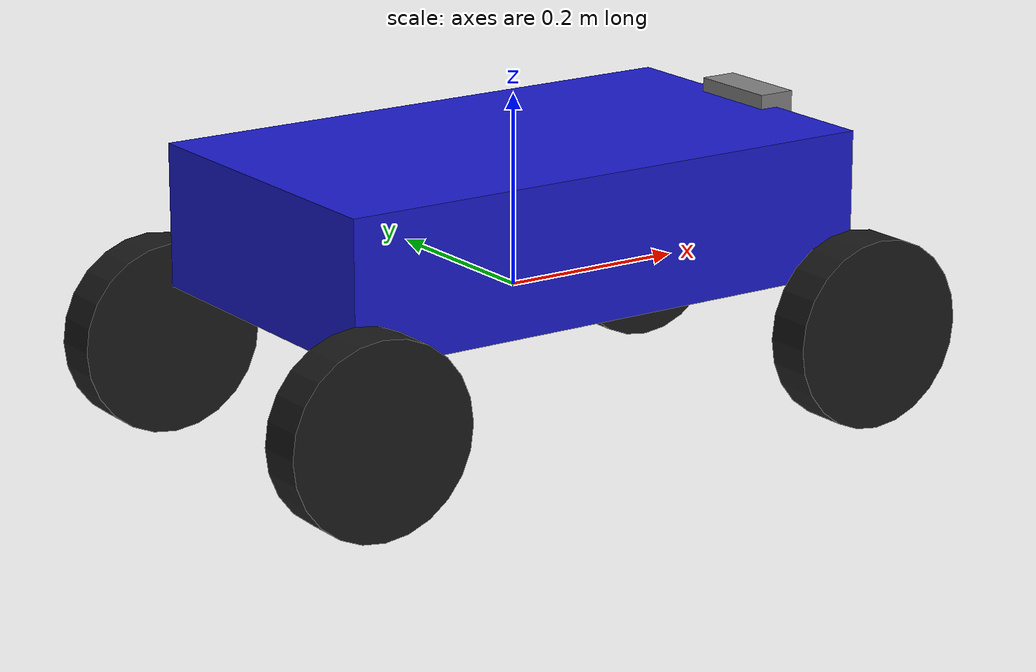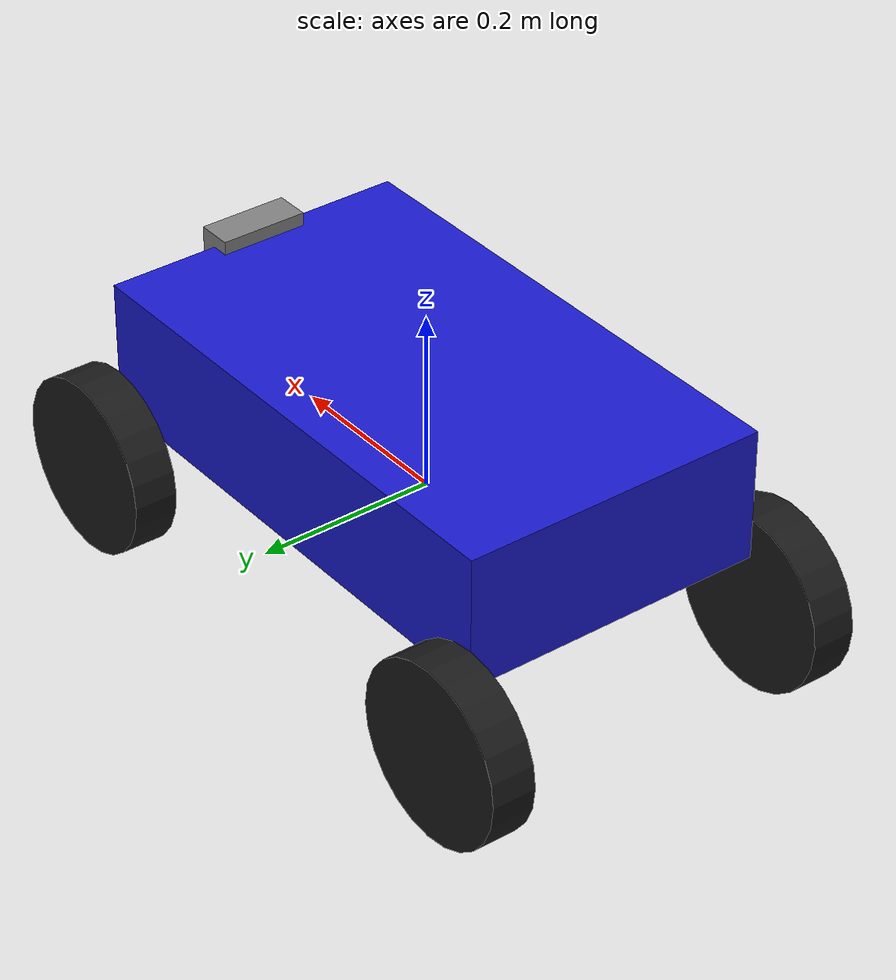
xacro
<?xml version="1.0"?>
<robot xmlns:xacro="http://www.ros.org/wiki/xacro" name="race_car">

  <!-- Colors for visual parts -->
  <material name="blue">
    <color rgba="0.1 0.1 0.8 1.0"/>
  </material>
  <material name="black">
    <color rgba="0.1 0.1 0.1 1.0"/>
  </material>
  <material name="gray">
    <color rgba="0.5 0.5 0.5 1.0"/>
  </material>

  <!-- Macro to create a wheel link and joint (reduces repetition) -->
  <xacro:macro name="wheel" params="prefix reflect_x reflect_y">
    <link name="${prefix}_wheel">
      <visual>
        <origin xyz="0 0 0" rpy="1.5708 0 0" />
        <geometry>
          <cylinder radius="0.1" length="0.05" />
        </geometry>
        <material name="black" />
      </visual>
      <collision>
        <origin xyz="0 0 0" rpy="1.5708 0 0" />
        <geometry>
          <cylinder radius="0.1" length="0.05" />
        </geometry>
      </collision>
      <inertial>
        <mass value="0.5" />
        <inertia ixx="0.001" ixy="0" ixz="0" iyy="0.001" iyz="0" izz="0.001" />
      </inertial>
    </link>

    <joint name="${prefix}_joint" type="continuous">
      <parent link="base_link" />
      <child link="${prefix}_wheel" />
      <origin xyz="${reflect_x * 0.3} ${reflect_y * 0.2} -0.05" rpy="0 0 0" />
      <axis xyz="0 0 1" />
      <limit effort="100" velocity="100" />
    </joint>
  </xacro:macro>

  <!-- Main chassis (base) -->
  <link name="base_link">
    <visual>
      <origin xyz="0 0 0.08" rpy="0 0 0" />
      <geometry>
        <box size="0.6 0.35 0.15" />
      </geometry>
      <material name="blue" />
    </visual>
    <collision>
      <origin xyz="0 0 0.08" rpy="0 0 0" />
      <geometry>
        <box size="0.6 0.35 0.15" />
      </geometry>
    </collision>
    <inertial>
      <mass value="2.0" />
      <inertia ixx="0.02" ixy="0" ixz="0" iyy="0.04" iyz="0" izz="0.04" />
    </inertial>
  </link>

  <!-- Forward-facing camera -->
  <link name="camera_link">
    <visual>
      <origin xyz="0 0 0" rpy="0 0 0" />
      <geometry>
        <box size="0.04 0.1 0.04" />
      </geometry>
      <material name="gray" />
    </visual>
    <collision>
      <origin xyz="0 0 0" rpy="0 0 0" />
      <geometry>
        <box size="0.04 0.1 0.04" />
      </geometry>
    </collision>
    <inertial>
      <mass value="0.05" />
      <inertia ixx="0.0001" ixy="0" ixz="0" iyy="0.0001" iyz="0" izz="0.0001" />
    </inertial>
  </link>

  <joint name="camera_joint" type="fixed">
    <parent link="base_link" />
    <child link="camera_link" />
    <origin xyz="0.3 0.0 0.15" rpy="0 0 0" />
  </joint>

  <!-- Create four wheels using the macro -->
  <xacro:wheel prefix="front_left"  reflect_x="1"  reflect_y="1"  />
  <xacro:wheel prefix="front_right" reflect_x="1"  reflect_y="-1" />
  <xacro:wheel prefix="rear_left"   reflect_x="-1" reflect_y="1"  />
  <xacro:wheel prefix="rear_right"  reflect_x="-1" reflect_y="-1" />

  <!-- Gazebo plugin for differential drive (Gazebo Harmonic / Jazzy) -->
  <gazebo>
    <plugin filename="gz-sim-diff-drive-system" name="gz::sim::systems::DiffDrive">
      <topic>/cmd_vel</topic>
      <left_joint>front_left_joint rear_left_joint</left_joint>
      <right_joint>front_right_joint rear_right_joint</right_joint>
      <wheel_separation>0.4</wheel_separation>
      <wheel_radius>0.1</wheel_radius>
      <odom_topic>/odom</odom_topic>
      <frame_id>odom</frame_id>
      <child_frame_id>base_link</child_frame_id>
    </plugin>
  </gazebo>

</robot>
